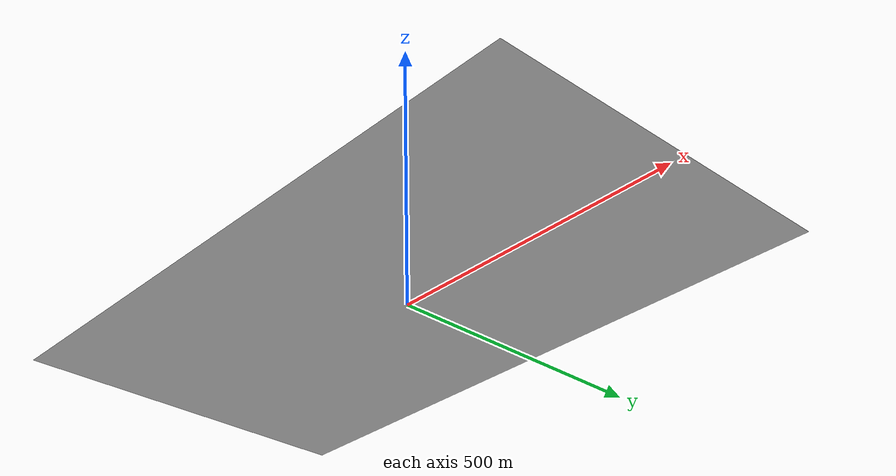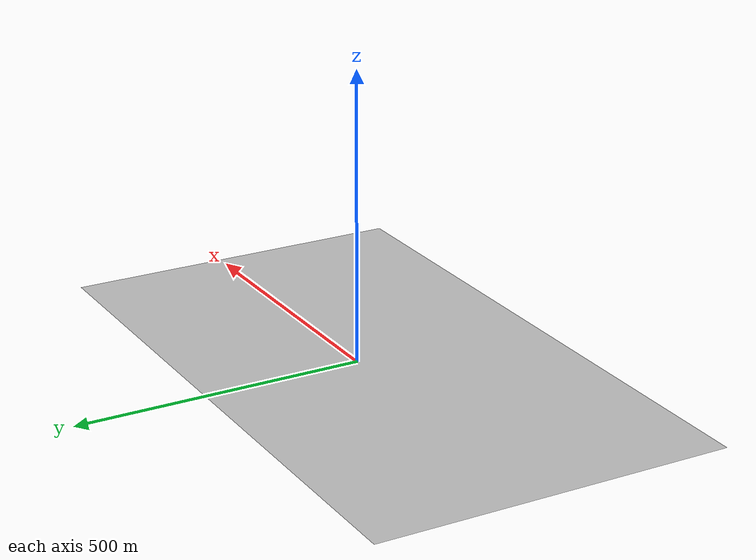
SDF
<?xml version="1.0" ?>
<sdf version="1.4">
  <model name="p2">
	<static>true</static>
	<link name="link">
      <pose>0 0 -0.1 0 0 0</pose>
	    <collision name="my_collision">
		<geometry>
                   <mesh><uri>model://p2/untitled.dae</uri></mesh>
		 </geometry>
	    </collision>

	    <visual name="my_visual">
		<geometry>
                   <mesh><uri>model://p2/untitled.dae</uri></mesh>
		 </geometry>
	    </visual>
	</link>
</model>
</sdf>
